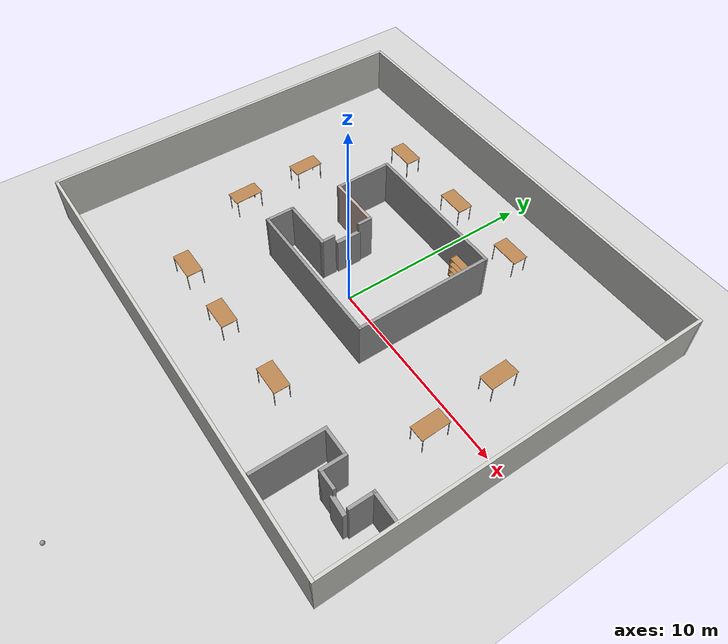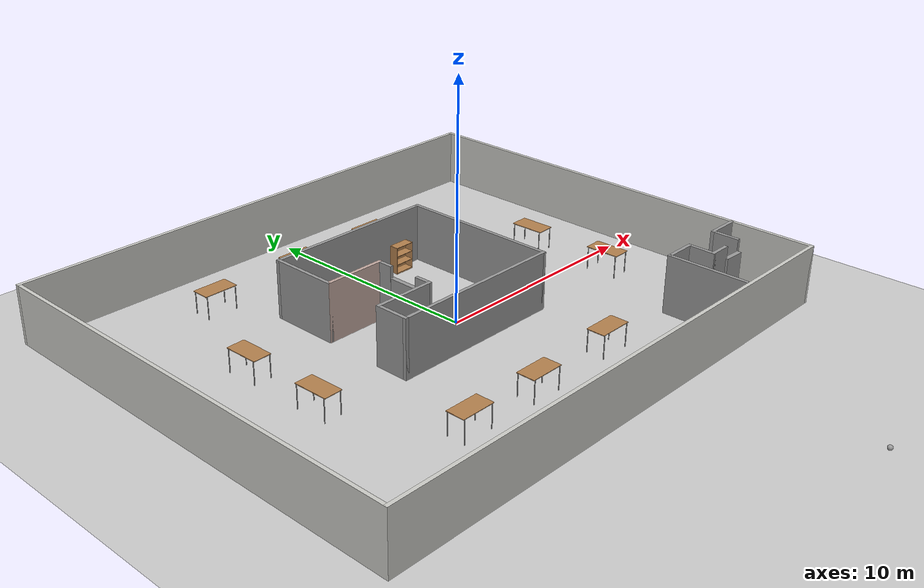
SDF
<sdf version="1.6">
 <world name="default">
  <plugin name="welcome" filename="libwelcome.so"/>
  <light name="sun" type="directional">
   <pose>0 0 10 0 -0 0</pose>
   <diffuse>0.8 0.8 0.8 1</diffuse>
   <specular>0.2 0.2 0.2 1</specular>
   <attenuation>
    <range>1000</range>
    <constant>0.9</constant>
    <linear>0.01</linear>
    <quadratic>0.001</quadratic>
   </attenuation>
   <direction>-0.5 0.1 -0.9</direction>
  </light>
  <model name="ground_plane">
   <static>1</static>
   <link name="link">
    <collision name="collision">
     <geometry><plane><normal>0 0 1</normal><size>100 100</size></plane></geometry>
     <surface>
      <contact><collide_bitmask>65535</collide_bitmask></contact>
      <friction><ode><mu>100</mu><mu2>50</mu2></ode></friction>
     </surface>
    </collision>
    <visual name="visual">
     <cast_shadows>0</cast_shadows>
     <geometry><plane><normal>0 0 1</normal><size>100 100</size></plane></geometry>
     <material>
      <script><uri>file://media/materials/scripts/gazebo.material</uri><name>Gazebo/Grey</name></script>
     </material>
    </visual>
   </link>
  </model>
  <gravity>0 0 -9.8</gravity>
  <magnetic_field>6e-06 2.3e-05 -4.2e-05</magnetic_field>
  <atmosphere type="adiabatic"/>
  <physics name="default_physics" default="0" type="ode">
   <max_step_size>0.001</max_step_size>
   <real_time_factor>1</real_time_factor>
   <real_time_update_rate>1000</real_time_update_rate>
  </physics>
  <scene><ambient>0.4 0.4 0.4 1</ambient><background>0.7 0.7 0.7 1</background><shadows>1</shadows></scene>
  <spherical_coordinates>
   <surface_model>EARTH_WGS84</surface_model>
   <latitude_deg>0</latitude_deg>
   <longitude_deg>0</longitude_deg>
   <elevation>0</elevation>
   <heading_deg>0</heading_deg>
  </spherical_coordinates>
  <model name="building">
   <pose>-0.722 0.805997 0 0 -0 0</pose>
   <link name="Door_0">
    <collision name="Door_0_Collision">
     <geometry><box><size>1.28749 0.2 2</size></box></geometry>
     <pose>0 0 1 0 -0 0</pose>
    </collision>
    <visual name="Door_0_Visual">
     <pose>0 0 1 0 -0 0</pose>
     <geometry><box><size>1.28749 0.2 2</size></box></geometry>
     <material>
      <script><uri>file://media/materials/scripts/gazebo.material</uri><name>Gazebo/Grey</name></script>
     </material>
    </visual>
    <pose>-1.03517 0.324293 0 0 0 -1.57581</pose>
   </link>
   <link name="Door_1">
    <collision name="Door_1_Collision">
     <geometry><box><size>0.932677 0.2 2</size></box></geometry>
     <pose>0 0 1 0 -0 0</pose>
    </collision>
    <visual name="Door_1_Visual">
     <pose>0 0 1 0 -0 0</pose>
     <geometry><box><size>0.932677 0.2 2</size></box></geometry>
     <material>
      <script><uri>file://media/materials/scripts/gazebo.material</uri><name>Gazebo/Grey</name></script>
     </material>
    </visual>
    <pose>9.75351 -7.35998 0 0 0 -0.048775</pose>
   </link>
   <link name="Wall_11">
    <collision name="Wall_11_Collision">
     <geometry><box><size>7.75 0.15 2.5</size></box></geometry>
     <pose>0 0 1.25 0 -0 0</pose>
    </collision>
    <visual name="Wall_11_Visual">
     <pose>0 0 1.25 0 -0 0</pose>
     <geometry><box><size>7.75 0.15 2.5</size></box></geometry>
     <material>
      <script><uri>file://media/materials/scripts/gazebo.material</uri><name>Gazebo/Grey</name></script>
      <ambient>1 1 1 1</ambient>
     </material>
     <meta><layer>0</layer></meta>
    </visual>
    <pose>0.135 -2.427 0 0 -0 0</pose>
   </link>
   <link name="Wall_12">
    <collision name="Wall_12_Collision">
     <geometry><box><size>7 0.15 2.5</size></box></geometry>
     <pose>0 0 1.25 0 -0 0</pose>
    </collision>
    <visual name="Wall_12_Visual">
     <pose>0 0 1.25 0 -0 0</pose>
     <geometry><box><size>7 0.15 2.5</size></box></geometry>
     <material>
      <script><uri>file://media/materials/scripts/gazebo.material</uri><name>Gazebo/Grey</name></script>
      <ambient>1 1 1 1</ambient>
     </material>
     <meta><layer>0</layer></meta>
    </visual>
    <pose>3.935 0.998 0 0 -0 1.5708</pose>
   </link>
   <link name="Wall_13">
    <collision name="Wall_13_Collision">
     <geometry><box><size>7.75 0.15 2.5</size></box></geometry>
     <pose>0 0 1.25 0 -0 0</pose>
    </collision>
    <visual name="Wall_13_Visual">
     <pose>0 0 1.25 0 -0 0</pose>
     <geometry><box><size>7.75 0.15 2.5</size></box></geometry>
     <material>
      <script><uri>file://media/materials/scripts/gazebo.material</uri><name>Gazebo/Grey</name></script>
      <ambient>1 1 1 1</ambient>
     </material>
     <meta><layer>0</layer></meta>
    </visual>
    <pose>0.135 4.423 0 0 -0 3.14159</pose>
   </link>
   <link name="Wall_15">
    <collision name="Wall_15_Collision">
     <geometry><box><size>3 0.15 2.5</size></box></geometry>
     <pose>0 0 1.25 0 -0 0</pose>
    </collision>
    <visual name="Wall_15_Visual">
     <pose>0 0 1.25 0 -0 0</pose>
     <geometry><box><size>3 0.15 2.5</size></box></geometry>
     <material>
      <script><uri>file://media/materials/scripts/gazebo.material</uri><name>Gazebo/Grey</name></script>
      <ambient>1 1 1 1</ambient>
     </material>
     <meta><layer>0</layer></meta>
    </visual>
    <pose>-3.665 2.998 0 0 0 -1.5708</pose>
   </link>
   <link name="Wall_16">
    <collision name="Wall_16_Collision">
     <geometry><box><size>2.75 0.15 2.5</size></box></geometry>
     <pose>0 0 1.25 0 -0 0</pose>
    </collision>
    <visual name="Wall_16_Visual">
     <pose>0 0 1.25 0 -0 0</pose>
     <geometry><box><size>2.75 0.15 2.5</size></box></geometry>
     <material>
      <script><uri>file://media/materials/scripts/gazebo.material</uri><name>Gazebo/Grey</name></script>
      <ambient>0.760784 0.662745 0.627451 1</ambient>
     </material>
     <meta><layer>0</layer></meta>
    </visual>
    <pose>-2.365 1.573 0 0 -0 0</pose>
   </link>
   <link name="Wall_17">
    <collision name="Wall_17_Collision">
     <geometry><box><size>0.75 0.15 2.5</size></box></geometry>
     <pose>0 0 1.25 0 -0 0</pose>
    </collision>
    <visual name="Wall_17_Visual">
     <pose>0 0 1.25 0 -0 0</pose>
     <geometry><box><size>0.75 0.15 2.5</size></box></geometry>
     <material>
      <script><uri>file://media/materials/scripts/gazebo.material</uri><name>Gazebo/Grey</name></script>
      <ambient>1 1 1 1</ambient>
     </material>
     <meta><layer>0</layer></meta>
    </visual>
    <pose>-1.065 1.273 0 0 0 -1.5708</pose>
   </link>
   <link name="Wall_19">
    <collision name="Wall_19_Collision">
     <geometry><box><size>1.5 0.15 2.5</size></box></geometry>
     <pose>0 0 1.25 0 -0 0</pose>
    </collision>
    <visual name="Wall_19_Visual">
     <pose>0 0 1.25 0 -0 0</pose>
     <geometry><box><size>1.5 0.15 2.5</size></box></geometry>
     <material>
      <script><uri>file://media/materials/scripts/gazebo.material</uri><name>Gazebo/Grey</name></script>
      <ambient>1 1 1 1</ambient>
     </material>
     <meta><layer>0</layer></meta>
    </visual>
    <pose>-3.665 -1.752 0 0 -0 1.5708</pose>
   </link>
   <link name="Wall_20">
    <collision name="Wall_20_Collision">
     <geometry><box><size>2.75 0.15 2.5</size></box></geometry>
     <pose>0 0 1.25 0 -0 0</pose>
    </collision>
    <visual name="Wall_20_Visual">
     <pose>0 0 1.25 0 -0 0</pose>
     <geometry><box><size>2.75 0.15 2.5</size></box></geometry>
     <material>
      <script><uri>file://media/materials/scripts/gazebo.material</uri><name>Gazebo/Grey</name></script>
      <ambient>1 1 1 1</ambient>
     </material>
     <meta><layer>0</layer></meta>
    </visual>
    <pose>-2.365 -1.077 0 0 -0 0</pose>
   </link>
   <link name="Wall_21">
    <collision name="Wall_21_Collision">
     <geometry><box><size>0.75 0.15 2.5</size></box></geometry>
     <pose>0 0 1.25 0 -0 0</pose>
    </collision>
    <visual name="Wall_21_Visual">
     <pose>0 0 1.25 0 -0 0</pose>
     <geometry><box><size>0.75 0.15 2.5</size></box></geometry>
     <material>
      <script><uri>file://media/materials/scripts/gazebo.material</uri><name>Gazebo/Grey</name></script>
      <ambient>1 1 1 1</ambient>
     </material>
     <meta><layer>0</layer></meta>
    </visual>
    <pose>-1.06498 -0.777074 0 0 -0 1.57073</pose>
   </link>
   <link name="Wall_4">
    <collision name="Wall_4_Collision">
     <geometry><box><size>19.5 0.15 2.5</size></box></geometry>
     <pose>0 0 1.25 0 -0 0</pose>
    </collision>
    <visual name="Wall_4_Visual">
     <pose>0 0 1.25 0 -0 0</pose>
     <geometry><box><size>19.5 0.15 2.5</size></box></geometry>
     <material>
      <script><uri>file://media/materials/scripts/gazebo.material</uri><name>Gazebo/CeilingTiled</name></script>
      <ambient>0.435294 0.796078 0.67451 1</ambient>
     </material>
     <meta><layer>0</layer></meta>
    </visual>
    <pose>-11.675 0 0 0 0 -1.5708</pose>
   </link>
   <link name="Wall_5">
    <collision name="Wall_5_Collision">
     <geometry><box><size>23.5 0.15 2.5</size></box></geometry>
     <pose>0 0 1.25 0 -0 0</pose>
    </collision>
    <visual name="Wall_5_Visual">
     <pose>0 0 1.25 0 -0 0</pose>
     <geometry><box><size>23.5 0.15 2.5</size></box></geometry>
     <material>
      <script><uri>file://media/materials/scripts/gazebo.material</uri><name>Gazebo/CeilingTiled</name></script>
      <ambient>0.435294 0.796078 0.67451 1</ambient>
     </material>
     <meta><layer>0</layer></meta>
    </visual>
    <pose>0 -9.675 0 0 -0 0</pose>
   </link>
   <link name="Wall_51">
    <collision name="Wall_51_Collision">
     <geometry><box><size>3.5 0.15 2.5</size></box></geometry>
     <pose>0 0 1.25 0 -0 0</pose>
    </collision>
    <visual name="Wall_51_Visual">
     <pose>0 0 1.25 0 -0 0</pose>
     <geometry><box><size>3.5 0.15 2.5</size></box></geometry>
     <material>
      <script><uri>file://media/materials/scripts/gazebo.material</uri><name>Gazebo/Grey</name></script>
      <ambient>1 1 1 1</ambient>
     </material>
     <meta><layer>0</layer></meta>
    </visual>
    <pose>7.08944 -7.83193 0 0 -0 1.5708</pose>
   </link>
   <link name="Wall_52">
    <collision name="Wall_52_Collision">
     <geometry><box><size>1.5 0.15 2.5</size></box></geometry>
     <pose>0 0 1.25 0 -0 0</pose>
    </collision>
    <visual name="Wall_52_Visual">
     <pose>0 0 1.25 0 -0 0</pose>
     <geometry><box><size>1.5 0.15 2.5</size></box></geometry>
     <material>
      <script><uri>file://media/materials/scripts/gazebo.material</uri><name>Gazebo/Grey</name></script>
      <ambient>1 1 1 1</ambient>
     </material>
     <meta><layer>0</layer></meta>
    </visual>
    <pose>7.76444 -6.15693 0 0 -0 0</pose>
   </link>
   <link name="Wall_53">
    <collision name="Wall_53_Collision">
     <geometry><box><size>1.25 0.15 2.5</size></box></geometry>
     <pose>0 0 1.25 0 -0 0</pose>
    </collision>
    <visual name="Wall_53_Visual">
     <pose>0 0 1.25 0 -0 0</pose>
     <geometry><box><size>1.25 0.15 2.5</size></box></geometry>
     <material>
      <script><uri>file://media/materials/scripts/gazebo.material</uri><name>Gazebo/Grey</name></script>
      <ambient>1 1 1 1</ambient>
     </material>
     <meta><layer>0</layer></meta>
    </visual>
    <pose>8.43944 -6.70693 0 0 0 -1.5708</pose>
   </link>
   <link name="Wall_54">
    <collision name="Wall_54_Collision">
     <geometry><box><size>1 0.15 2.5</size></box></geometry>
     <pose>0 0 1.25 0 -0 0</pose>
    </collision>
    <visual name="Wall_54_Visual">
     <pose>0 0 1.25 0 -0 0</pose>
     <geometry><box><size>1 0.15 2.5</size></box></geometry>
     <material>
      <script><uri>file://media/materials/scripts/gazebo.material</uri><name>Gazebo/Grey</name></script>
      <ambient>1 1 1 1</ambient>
     </material>
     <meta><layer>0</layer></meta>
    </visual>
    <pose>8.86444 -7.25693 0 0 -0 0</pose>
   </link>
   <link name="Wall_56">
    <collision name="Wall_56_Collision">
     <geometry><box><size>1.5 0.15 2.5</size></box></geometry>
     <pose>0 0 1.25 0 -0 0</pose>
    </collision>
    <visual name="Wall_56_Visual">
     <pose>0 0 1.25 0 -0 0</pose>
     <geometry><box><size>1.5 0.15 2.5</size></box></geometry>
     <material>
      <script><uri>file://media/materials/scripts/gazebo.material</uri><name>Gazebo/Grey</name></script>
      <ambient>1 1 1 1</ambient>
     </material>
     <meta><layer>0</layer></meta>
    </visual>
    <pose>10.9273 -6.11068 0 0 -0 3.14159</pose>
   </link>
   <link name="Wall_57">
    <collision name="Wall_57_Collision">
     <geometry><box><size>1.25 0.15 2.5</size></box></geometry>
     <pose>0 0 1.25 0 -0 0</pose>
    </collision>
    <visual name="Wall_57_Visual">
     <pose>0 0 1.25 0 -0 0</pose>
     <geometry><box><size>1.25 0.15 2.5</size></box></geometry>
     <material>
      <script><uri>file://media/materials/scripts/gazebo.material</uri><name>Gazebo/Grey</name></script>
      <ambient>1 1 1 1</ambient>
     </material>
     <meta><layer>0</layer></meta>
    </visual>
    <pose>10.2523 -6.66068 0 0 0 -1.5708</pose>
   </link>
   <link name="Wall_6">
    <collision name="Wall_6_Collision">
     <geometry><box><size>19.5 0.15 2.5</size></box></geometry>
     <pose>0 0 1.25 0 -0 0</pose>
    </collision>
    <visual name="Wall_6_Visual">
     <pose>0 0 1.25 0 -0 0</pose>
     <geometry><box><size>19.5 0.15 2.5</size></box></geometry>
     <material>
      <script><uri>file://media/materials/scripts/gazebo.material</uri><name>Gazebo/CeilingTiled</name></script>
      <ambient>0.435294 0.796078 0.67451 1</ambient>
     </material>
     <meta><layer>0</layer></meta>
    </visual>
    <pose>11.675 0 0 0 -0 1.5708</pose>
   </link>
   <link name="Wall_7">
    <collision name="Wall_7_Collision">
     <geometry><box><size>23.5 0.15 2.5</size></box></geometry>
     <pose>0 0 1.25 0 -0 0</pose>
    </collision>
    <visual name="Wall_7_Visual">
     <pose>0 0 1.25 0 -0 0</pose>
     <geometry><box><size>23.5 0.15 2.5</size></box></geometry>
     <material>
      <script><uri>file://media/materials/scripts/gazebo.material</uri><name>Gazebo/CeilingTiled</name></script>
      <ambient>0.435294 0.796078 0.67451 1</ambient>
     </material>
     <meta><layer>0</layer></meta>
    </visual>
    <pose>0 9.675 0 0 -0 3.14159</pose>
   </link>
   <static>1</static>
  </model>
  <model name="bookshelf">
   <static>1</static>
   <link name="link">
    <inertial><mass>1</mass></inertial>
    <collision name="back">
     <pose>0 0.005 0.6 0 -0 0</pose>
     <geometry><box><size>0.9 0.01 1.2</size></box></geometry>
    </collision>
    <visual name="visual1">
     <pose>0 0.005 0.6 0 -0 0</pose>
     <geometry><box><size>0.9 0.01 1.2</size></box></geometry>
     <material>
      <script><uri>file://media/materials/scripts/gazebo.material</uri><name>Gazebo/Wood</name></script>
     </material>
    </visual>
    <collision name="left_side">
     <pose>0.45 -0.195 0.6 0 -0 0</pose>
     <geometry><box><size>0.02 0.4 1.2</size></box></geometry>
    </collision>
    <visual name="visual2">
     <pose>0.45 -0.195 0.6 0 -0 0</pose>
     <geometry><box><size>0.02 0.4 1.2</size></box></geometry>
     <material>
      <script><uri>file://media/materials/scripts/gazebo.material</uri><name>Gazebo/Wood</name></script>
     </material>
    </visual>
    <collision name="right_side">
     <pose>-0.45 -0.195 0.6 0 -0 0</pose>
     <geometry><box><size>0.02 0.4 1.2</size></box></geometry>
    </collision>
    <visual name="visual3">
     <pose>-0.45 -0.195 0.6 0 -0 0</pose>
     <geometry><box><size>0.02 0.4 1.2</size></box></geometry>
     <material>
      <script><uri>file://media/materials/scripts/gazebo.material</uri><name>Gazebo/Wood</name></script>
     </material>
    </visual>
    <collision name="bottom">
     <pose>0 -0.195 0.03 0 -0 0</pose>
     <geometry><box><size>0.88 0.4 0.06</size></box></geometry>
    </collision>
    <visual name="visual4">
     <pose>0 -0.195 0.03 0 -0 0</pose>
     <geometry><box><size>0.88 0.4 0.06</size></box></geometry>
     <material>
      <script><uri>file://media/materials/scripts/gazebo.material</uri><name>Gazebo/Wood</name></script>
     </material>
    </visual>
    <collision name="top">
     <pose>0 -0.195 1.19 0 -0 0</pose>
     <geometry><box><size>0.88 0.4 0.02</size></box></geometry>
    </collision>
    <visual name="visual5">
     <pose>0 -0.195 1.19 0 -0 0</pose>
     <geometry><box><size>0.88 0.4 0.02</size></box></geometry>
     <material>
      <script><uri>file://media/materials/scripts/gazebo.material</uri><name>Gazebo/Wood</name></script>
     </material>
    </visual>
    <collision name="low_shelf">
     <pose>0 -0.195 0.43 0 -0 0</pose>
     <geometry><box><size>0.88 0.4 0.02</size></box></geometry>
    </collision>
    <visual name="visual6">
     <pose>0 -0.195 0.43 0 -0 0</pose>
     <geometry><box><size>0.88 0.4 0.02</size></box></geometry>
     <material>
      <script><uri>file://media/materials/scripts/gazebo.material</uri><name>Gazebo/Wood</name></script>
     </material>
    </visual>
    <collision name="high_shelf">
     <pose>0 -0.195 0.8 0 -0 0</pose>
     <geometry><box><size>0.88 0.4 0.02</size></box></geometry>
    </collision>
    <visual name="visual7">
     <pose>0 -0.195 0.8 0 -0 0</pose>
     <geometry><box><size>0.88 0.4 0.02</size></box></geometry>
     <material>
      <script><uri>file://media/materials/scripts/gazebo.material</uri><name>Gazebo/Wood</name></script>
     </material>
    </visual>
   </link>
   <pose>1.9332 5.1179 0 0 -0 0</pose>
  </model>
  <model name="table">
   <static>1</static>
   <link name="link">
    <collision name="surface">
     <pose>0 0 1 0 -0 0</pose>
     <geometry><box><size>1.5 0.8 0.03</size></box></geometry>
     <surface><friction><ode><mu>0.6</mu><mu2>0.6</mu2></ode></friction></surface>
    </collision>
    <visual name="visual1">
     <pose>0 0 1 0 -0 0</pose>
     <geometry><box><size>1.5 0.8 0.03</size></box></geometry>
     <material>
      <script><uri>file://media/materials/scripts/gazebo.material</uri><name>Gazebo/Wood</name></script>
     </material>
    </visual>
    <collision name="front_left_leg">
     <pose>0.68 0.38 0.5 0 -0 0</pose>
     <geometry><cylinder><radius>0.02</radius><length>1</length></cylinder></geometry>
    </collision>
    <visual name="front_left_leg">
     <pose>0.68 0.38 0.5 0 -0 0</pose>
     <geometry><cylinder><radius>0.02</radius><length>1</length></cylinder></geometry>
     <material>
      <script><uri>file://media/materials/scripts/gazebo.material</uri><name>Gazebo/Grey</name></script>
     </material>
    </visual>
    <collision name="front_right_leg">
     <pose>0.68 -0.38 0.5 0 -0 0</pose>
     <geometry><cylinder><radius>0.02</radius><length>1</length></cylinder></geometry>
    </collision>
    <visual name="front_right_leg">
     <pose>0.68 -0.38 0.5 0 -0 0</pose>
     <geometry><cylinder><radius>0.02</radius><length>1</length></cylinder></geometry>
     <material>
      <script><uri>file://media/materials/scripts/gazebo.material</uri><name>Gazebo/Grey</name></script>
     </material>
    </visual>
    <collision name="back_right_leg">
     <pose>-0.68 -0.38 0.5 0 -0 0</pose>
     <geometry><cylinder><radius>0.02</radius><length>1</length></cylinder></geometry>
    </collision>
    <visual name="back_right_leg">
     <pose>-0.68 -0.38 0.5 0 -0 0</pose>
     <geometry><cylinder><radius>0.02</radius><length>1</length></cylinder></geometry>
     <material>
      <script><uri>file://media/materials/scripts/gazebo.material</uri><name>Gazebo/Grey</name></script>
     </material>
    </visual>
    <collision name="back_left_leg">
     <pose>-0.68 0.38 0.5 0 -0 0</pose>
     <geometry><cylinder><radius>0.02</radius><length>1</length></cylinder></geometry>
    </collision>
    <visual name="back_left_leg">
     <pose>-0.68 0.38 0.5 0 -0 0</pose>
     <geometry><cylinder><radius>0.02</radius><length>1</length></cylinder></geometry>
     <material>
      <script><uri>file://media/materials/scripts/gazebo.material</uri><name>Gazebo/Grey</name></script>
     </material>
    </visual>
   </link>
   <pose>2.35411 -5.44146 0 0 -0 0</pose>
  </model>
  <model name="table_clone">
   <static>1</static>
   <link name="link">
    <collision name="surface">
     <pose>0 0 1 0 -0 0</pose>
     <geometry><box><size>1.5 0.8 0.03</size></box></geometry>
     <surface><friction><ode><mu>0.6</mu><mu2>0.6</mu2></ode></friction></surface>
    </collision>
    <visual name="visual1">
     <pose>0 0 1 0 -0 0</pose>
     <geometry><box><size>1.5 0.8 0.03</size></box></geometry>
     <material>
      <script><uri>file://media/materials/scripts/gazebo.material</uri><name>Gazebo/Wood</name></script>
     </material>
    </visual>
    <collision name="front_left_leg">
     <pose>0.68 0.38 0.5 0 -0 0</pose>
     <geometry><cylinder><radius>0.02</radius><length>1</length></cylinder></geometry>
    </collision>
    <visual name="front_left_leg">
     <pose>0.68 0.38 0.5 0 -0 0</pose>
     <geometry><cylinder><radius>0.02</radius><length>1</length></cylinder></geometry>
     <material>
      <script><uri>file://media/materials/scripts/gazebo.material</uri><name>Gazebo/Grey</name></script>
     </material>
    </visual>
    <collision name="front_right_leg">
     <pose>0.68 -0.38 0.5 0 -0 0</pose>
     <geometry><cylinder><radius>0.02</radius><length>1</length></cylinder></geometry>
    </collision>
    <visual name="front_right_leg">
     <pose>0.68 -0.38 0.5 0 -0 0</pose>
     <geometry><cylinder><radius>0.02</radius><length>1</length></cylinder></geometry>
     <material>
      <script><uri>file://media/materials/scripts/gazebo.material</uri><name>Gazebo/Grey</name></script>
     </material>
    </visual>
    <collision name="back_right_leg">
     <pose>-0.68 -0.38 0.5 0 -0 0</pose>
     <geometry><cylinder><radius>0.02</radius><length>1</length></cylinder></geometry>
    </collision>
    <visual name="back_right_leg">
     <pose>-0.68 -0.38 0.5 0 -0 0</pose>
     <geometry><cylinder><radius>0.02</radius><length>1</length></cylinder></geometry>
     <material>
      <script><uri>file://media/materials/scripts/gazebo.material</uri><name>Gazebo/Grey</name></script>
     </material>
    </visual>
    <collision name="back_left_leg">
     <pose>-0.68 0.38 0.5 0 -0 0</pose>
     <geometry><cylinder><radius>0.02</radius><length>1</length></cylinder></geometry>
    </collision>
    <visual name="back_left_leg">
     <pose>-0.68 0.38 0.5 0 -0 0</pose>
     <geometry><cylinder><radius>0.02</radius><length>1</length></cylinder></geometry>
     <material>
      <script><uri>file://media/materials/scripts/gazebo.material</uri><name>Gazebo/Grey</name></script>
     </material>
    </visual>
   </link>
   <pose>-1.86776 -5.62268 0 0 -0 0</pose>
  </model>
  <model name="table_clone_0">
   <static>1</static>
   <link name="link">
    <collision name="surface">
     <pose>0 0 1 0 -0 0</pose>
     <geometry><box><size>1.5 0.8 0.03</size></box></geometry>
     <surface><friction><ode><mu>0.6</mu><mu2>0.6</mu2></ode></friction></surface>
    </collision>
    <visual name="visual1">
     <pose>0 0 1 0 -0 0</pose>
     <geometry><box><size>1.5 0.8 0.03</size></box></geometry>
     <material>
      <script><uri>file://media/materials/scripts/gazebo.material</uri><name>Gazebo/Wood</name></script>
     </material>
    </visual>
    <collision name="front_left_leg">
     <pose>0.68 0.38 0.5 0 -0 0</pose>
     <geometry><cylinder><radius>0.02</radius><length>1</length></cylinder></geometry>
    </collision>
    <visual name="front_left_leg">
     <pose>0.68 0.38 0.5 0 -0 0</pose>
     <geometry><cylinder><radius>0.02</radius><length>1</length></cylinder></geometry>
     <material>
      <script><uri>file://media/materials/scripts/gazebo.material</uri><name>Gazebo/Grey</name></script>
     </material>
    </visual>
    <collision name="front_right_leg">
     <pose>0.68 -0.38 0.5 0 -0 0</pose>
     <geometry><cylinder><radius>0.02</radius><length>1</length></cylinder></geometry>
    </collision>
    <visual name="front_right_leg">
     <pose>0.68 -0.38 0.5 0 -0 0</pose>
     <geometry><cylinder><radius>0.02</radius><length>1</length></cylinder></geometry>
     <material>
      <script><uri>file://media/materials/scripts/gazebo.material</uri><name>Gazebo/Grey</name></script>
     </material>
    </visual>
    <collision name="back_right_leg">
     <pose>-0.68 -0.38 0.5 0 -0 0</pose>
     <geometry><cylinder><radius>0.02</radius><length>1</length></cylinder></geometry>
    </collision>
    <visual name="back_right_leg">
     <pose>-0.68 -0.38 0.5 0 -0 0</pose>
     <geometry><cylinder><radius>0.02</radius><length>1</length></cylinder></geometry>
     <material>
      <script><uri>file://media/materials/scripts/gazebo.material</uri><name>Gazebo/Grey</name></script>
     </material>
    </visual>
    <collision name="back_left_leg">
     <pose>-0.68 0.38 0.5 0 -0 0</pose>
     <geometry><cylinder><radius>0.02</radius><length>1</length></cylinder></geometry>
    </collision>
    <visual name="back_left_leg">
     <pose>-0.68 0.38 0.5 0 -0 0</pose>
     <geometry><cylinder><radius>0.02</radius><length>1</length></cylinder></geometry>
     <material>
      <script><uri>file://media/materials/scripts/gazebo.material</uri><name>Gazebo/Grey</name></script>
     </material>
    </visual>
   </link>
   <pose>-5.35874 -5.55545 0 0 -0 0</pose>
  </model>
  <model name="table_clone_0_clone">
   <static>1</static>
   <link name="link">
    <collision name="surface">
     <pose>0 0 1 0 -0 0</pose>
     <geometry><box><size>1.5 0.8 0.03</size></box></geometry>
     <surface><friction><ode><mu>0.6</mu><mu2>0.6</mu2></ode></friction></surface>
    </collision>
    <visual name="visual1">
     <pose>0 0 1 0 -0 0</pose>
     <geometry><box><size>1.5 0.8 0.03</size></box></geometry>
     <material>
      <script><uri>file://media/materials/scripts/gazebo.material</uri><name>Gazebo/Wood</name></script>
     </material>
    </visual>
    <collision name="front_left_leg">
     <pose>0.68 0.38 0.5 0 -0 0</pose>
     <geometry><cylinder><radius>0.02</radius><length>1</length></cylinder></geometry>
    </collision>
    <visual name="front_left_leg">
     <pose>0.68 0.38 0.5 0 -0 0</pose>
     <geometry><cylinder><radius>0.02</radius><length>1</length></cylinder></geometry>
     <material>
      <script><uri>file://media/materials/scripts/gazebo.material</uri><name>Gazebo/Grey</name></script>
     </material>
    </visual>
    <collision name="front_right_leg">
     <pose>0.68 -0.38 0.5 0 -0 0</pose>
     <geometry><cylinder><radius>0.02</radius><length>1</length></cylinder></geometry>
    </collision>
    <visual name="front_right_leg">
     <pose>0.68 -0.38 0.5 0 -0 0</pose>
     <geometry><cylinder><radius>0.02</radius><length>1</length></cylinder></geometry>
     <material>
      <script><uri>file://media/materials/scripts/gazebo.material</uri><name>Gazebo/Grey</name></script>
     </material>
    </visual>
    <collision name="back_right_leg">
     <pose>-0.68 -0.38 0.5 0 -0 0</pose>
     <geometry><cylinder><radius>0.02</radius><length>1</length></cylinder></geometry>
    </collision>
    <visual name="back_right_leg">
     <pose>-0.68 -0.38 0.5 0 -0 0</pose>
     <geometry><cylinder><radius>0.02</radius><length>1</length></cylinder></geometry>
     <material>
      <script><uri>file://media/materials/scripts/gazebo.material</uri><name>Gazebo/Grey</name></script>
     </material>
    </visual>
    <collision name="back_left_leg">
     <pose>-0.68 0.38 0.5 0 -0 0</pose>
     <geometry><cylinder><radius>0.02</radius><length>1</length></cylinder></geometry>
    </collision>
    <visual name="back_left_leg">
     <pose>-0.68 0.38 0.5 0 -0 0</pose>
     <geometry><cylinder><radius>0.02</radius><length>1</length></cylinder></geometry>
     <material>
      <script><uri>file://media/materials/scripts/gazebo.material</uri><name>Gazebo/Grey</name></script>
     </material>
    </visual>
   </link>
   <pose>-7.96209 -0.990144 0 9.2e-05 0.003589 -1.54506</pose>
  </model>
  <model name="table_clone_0_clone_clone">
   <static>1</static>
   <link name="link">
    <collision name="surface">
     <pose>0 0 1 0 -0 0</pose>
     <geometry><box><size>1.5 0.8 0.03</size></box></geometry>
     <surface><friction><ode><mu>0.6</mu><mu2>0.6</mu2></ode></friction></surface>
    </collision>
    <visual name="visual1">
     <pose>0 0 1 0 -0 0</pose>
     <geometry><box><size>1.5 0.8 0.03</size></box></geometry>
     <material>
      <script><uri>file://media/materials/scripts/gazebo.material</uri><name>Gazebo/Wood</name></script>
     </material>
    </visual>
    <collision name="front_left_leg">
     <pose>0.68 0.38 0.5 0 -0 0</pose>
     <geometry><cylinder><radius>0.02</radius><length>1</length></cylinder></geometry>
    </collision>
    <visual name="front_left_leg">
     <pose>0.68 0.38 0.5 0 -0 0</pose>
     <geometry><cylinder><radius>0.02</radius><length>1</length></cylinder></geometry>
     <material>
      <script><uri>file://media/materials/scripts/gazebo.material</uri><name>Gazebo/Grey</name></script>
     </material>
    </visual>
    <collision name="front_right_leg">
     <pose>0.68 -0.38 0.5 0 -0 0</pose>
     <geometry><cylinder><radius>0.02</radius><length>1</length></cylinder></geometry>
    </collision>
    <visual name="front_right_leg">
     <pose>0.68 -0.38 0.5 0 -0 0</pose>
     <geometry><cylinder><radius>0.02</radius><length>1</length></cylinder></geometry>
     <material>
      <script><uri>file://media/materials/scripts/gazebo.material</uri><name>Gazebo/Grey</name></script>
     </material>
    </visual>
    <collision name="back_right_leg">
     <pose>-0.68 -0.38 0.5 0 -0 0</pose>
     <geometry><cylinder><radius>0.02</radius><length>1</length></cylinder></geometry>
    </collision>
    <visual name="back_right_leg">
     <pose>-0.68 -0.38 0.5 0 -0 0</pose>
     <geometry><cylinder><radius>0.02</radius><length>1</length></cylinder></geometry>
     <material>
      <script><uri>file://media/materials/scripts/gazebo.material</uri><name>Gazebo/Grey</name></script>
     </material>
    </visual>
    <collision name="back_left_leg">
     <pose>-0.68 0.38 0.5 0 -0 0</pose>
     <geometry><cylinder><radius>0.02</radius><length>1</length></cylinder></geometry>
    </collision>
    <visual name="back_left_leg">
     <pose>-0.68 0.38 0.5 0 -0 0</pose>
     <geometry><cylinder><radius>0.02</radius><length>1</length></cylinder></geometry>
     <material>
      <script><uri>file://media/materials/scripts/gazebo.material</uri><name>Gazebo/Grey</name></script>
     </material>
    </visual>
   </link>
   <pose>-8.04147 2.63602 0 9.2e-05 0.003589 -1.54506</pose>
  </model>
  <model name="table_clone_0_clone_clone_clone">
   <static>1</static>
   <link name="link">
    <collision name="surface">
     <pose>0 0 1 0 -0 0</pose>
     <geometry><box><size>1.5 0.8 0.03</size></box></geometry>
     <surface><friction><ode><mu>0.6</mu><mu2>0.6</mu2></ode></friction></surface>
    </collision>
    <visual name="visual1">
     <pose>0 0 1 0 -0 0</pose>
     <geometry><box><size>1.5 0.8 0.03</size></box></geometry>
     <material>
      <script><uri>file://media/materials/scripts/gazebo.material</uri><name>Gazebo/Wood</name></script>
     </material>
    </visual>
    <collision name="front_left_leg">
     <pose>0.68 0.38 0.5 0 -0 0</pose>
     <geometry><cylinder><radius>0.02</radius><length>1</length></cylinder></geometry>
    </collision>
    <visual name="front_left_leg">
     <pose>0.68 0.38 0.5 0 -0 0</pose>
     <geometry><cylinder><radius>0.02</radius><length>1</length></cylinder></geometry>
     <material>
      <script><uri>file://media/materials/scripts/gazebo.material</uri><name>Gazebo/Grey</name></script>
     </material>
    </visual>
    <collision name="front_right_leg">
     <pose>0.68 -0.38 0.5 0 -0 0</pose>
     <geometry><cylinder><radius>0.02</radius><length>1</length></cylinder></geometry>
    </collision>
    <visual name="front_right_leg">
     <pose>0.68 -0.38 0.5 0 -0 0</pose>
     <geometry><cylinder><radius>0.02</radius><length>1</length></cylinder></geometry>
     <material>
      <script><uri>file://media/materials/scripts/gazebo.material</uri><name>Gazebo/Grey</name></script>
     </material>
    </visual>
    <collision name="back_right_leg">
     <pose>-0.68 -0.38 0.5 0 -0 0</pose>
     <geometry><cylinder><radius>0.02</radius><length>1</length></cylinder></geometry>
    </collision>
    <visual name="back_right_leg">
     <pose>-0.68 -0.38 0.5 0 -0 0</pose>
     <geometry><cylinder><radius>0.02</radius><length>1</length></cylinder></geometry>
     <material>
      <script><uri>file://media/materials/scripts/gazebo.material</uri><name>Gazebo/Grey</name></script>
     </material>
    </visual>
    <collision name="back_left_leg">
     <pose>-0.68 0.38 0.5 0 -0 0</pose>
     <geometry><cylinder><radius>0.02</radius><length>1</length></cylinder></geometry>
    </collision>
    <visual name="back_left_leg">
     <pose>-0.68 0.38 0.5 0 -0 0</pose>
     <geometry><cylinder><radius>0.02</radius><length>1</length></cylinder></geometry>
     <material>
      <script><uri>file://media/materials/scripts/gazebo.material</uri><name>Gazebo/Grey</name></script>
     </material>
    </visual>
   </link>
   <pose>7.61249 2.49601 0 9.2e-05 0.003589 -1.54506</pose>
  </model>
  <model name="table_clone_0_clone_clone_0">
   <static>1</static>
   <link name="link">
    <collision name="surface">
     <pose>0 0 1 0 -0 0</pose>
     <geometry><box><size>1.5 0.8 0.03</size></box></geometry>
     <surface><friction><ode><mu>0.6</mu><mu2>0.6</mu2></ode></friction></surface>
    </collision>
    <visual name="visual1">
     <pose>0 0 1 0 -0 0</pose>
     <geometry><box><size>1.5 0.8 0.03</size></box></geometry>
     <material>
      <script><uri>file://media/materials/scripts/gazebo.material</uri><name>Gazebo/Wood</name></script>
     </material>
    </visual>
    <collision name="front_left_leg">
     <pose>0.68 0.38 0.5 0 -0 0</pose>
     <geometry><cylinder><radius>0.02</radius><length>1</length></cylinder></geometry>
    </collision>
    <visual name="front_left_leg">
     <pose>0.68 0.38 0.5 0 -0 0</pose>
     <geometry><cylinder><radius>0.02</radius><length>1</length></cylinder></geometry>
     <material>
      <script><uri>file://media/materials/scripts/gazebo.material</uri><name>Gazebo/Grey</name></script>
     </material>
    </visual>
    <collision name="front_right_leg">
     <pose>0.68 -0.38 0.5 0 -0 0</pose>
     <geometry><cylinder><radius>0.02</radius><length>1</length></cylinder></geometry>
    </collision>
    <visual name="front_right_leg">
     <pose>0.68 -0.38 0.5 0 -0 0</pose>
     <geometry><cylinder><radius>0.02</radius><length>1</length></cylinder></geometry>
     <material>
      <script><uri>file://media/materials/scripts/gazebo.material</uri><name>Gazebo/Grey</name></script>
     </material>
    </visual>
    <collision name="back_right_leg">
     <pose>-0.68 -0.38 0.5 0 -0 0</pose>
     <geometry><cylinder><radius>0.02</radius><length>1</length></cylinder></geometry>
    </collision>
    <visual name="back_right_leg">
     <pose>-0.68 -0.38 0.5 0 -0 0</pose>
     <geometry><cylinder><radius>0.02</radius><length>1</length></cylinder></geometry>
     <material>
      <script><uri>file://media/materials/scripts/gazebo.material</uri><name>Gazebo/Grey</name></script>
     </material>
    </visual>
    <collision name="back_left_leg">
     <pose>-0.68 0.38 0.5 0 -0 0</pose>
     <geometry><cylinder><radius>0.02</radius><length>1</length></cylinder></geometry>
    </collision>
    <visual name="back_left_leg">
     <pose>-0.68 0.38 0.5 0 -0 0</pose>
     <geometry><cylinder><radius>0.02</radius><length>1</length></cylinder></geometry>
     <material>
      <script><uri>file://media/materials/scripts/gazebo.material</uri><name>Gazebo/Grey</name></script>
     </material>
    </visual>
   </link>
   <pose>7.87451 -1.35454 0 9.2e-05 0.003589 -1.54506</pose>
  </model>
  <model name="table_clone_1">
   <static>1</static>
   <link name="link">
    <collision name="surface">
     <pose>0 0 1 0 -0 0</pose>
     <geometry><box><size>1.5 0.8 0.03</size></box></geometry>
     <surface><friction><ode><mu>0.6</mu><mu2>0.6</mu2></ode></friction></surface>
    </collision>
    <visual name="visual1">
     <pose>0 0 1 0 -0 0</pose>
     <geometry><box><size>1.5 0.8 0.03</size></box></geometry>
     <material>
      <script><uri>file://media/materials/scripts/gazebo.material</uri><name>Gazebo/Wood</name></script>
     </material>
    </visual>
    <collision name="front_left_leg">
     <pose>0.68 0.38 0.5 0 -0 0</pose>
     <geometry><cylinder><radius>0.02</radius><length>1</length></cylinder></geometry>
    </collision>
    <visual name="front_left_leg">
     <pose>0.68 0.38 0.5 0 -0 0</pose>
     <geometry><cylinder><radius>0.02</radius><length>1</length></cylinder></geometry>
     <material>
      <script><uri>file://media/materials/scripts/gazebo.material</uri><name>Gazebo/Grey</name></script>
     </material>
    </visual>
    <collision name="front_right_leg">
     <pose>0.68 -0.38 0.5 0 -0 0</pose>
     <geometry><cylinder><radius>0.02</radius><length>1</length></cylinder></geometry>
    </collision>
    <visual name="front_right_leg">
     <pose>0.68 -0.38 0.5 0 -0 0</pose>
     <geometry><cylinder><radius>0.02</radius><length>1</length></cylinder></geometry>
     <material>
      <script><uri>file://media/materials/scripts/gazebo.material</uri><name>Gazebo/Grey</name></script>
     </material>
    </visual>
    <collision name="back_right_leg">
     <pose>-0.68 -0.38 0.5 0 -0 0</pose>
     <geometry><cylinder><radius>0.02</radius><length>1</length></cylinder></geometry>
    </collision>
    <visual name="back_right_leg">
     <pose>-0.68 -0.38 0.5 0 -0 0</pose>
     <geometry><cylinder><radius>0.02</radius><length>1</length></cylinder></geometry>
     <material>
      <script><uri>file://media/materials/scripts/gazebo.material</uri><name>Gazebo/Grey</name></script>
     </material>
    </visual>
    <collision name="back_left_leg">
     <pose>-0.68 0.38 0.5 0 -0 0</pose>
     <geometry><cylinder><radius>0.02</radius><length>1</length></cylinder></geometry>
    </collision>
    <visual name="back_left_leg">
     <pose>-0.68 0.38 0.5 0 -0 0</pose>
     <geometry><cylinder><radius>0.02</radius><length>1</length></cylinder></geometry>
     <material>
      <script><uri>file://media/materials/scripts/gazebo.material</uri><name>Gazebo/Grey</name></script>
     </material>
    </visual>
   </link>
   <pose>2.5897 7.51516 0 0 -0 0</pose>
  </model>
  <model name="table_clone_2">
   <static>1</static>
   <link name="link">
    <collision name="surface">
     <pose>0 0 1 0 -0 0</pose>
     <geometry><box><size>1.5 0.8 0.03</size></box></geometry>
     <surface><friction><ode><mu>0.6</mu><mu2>0.6</mu2></ode></friction></surface>
    </collision>
    <visual name="visual1">
     <pose>0 0 1 0 -0 0</pose>
     <geometry><box><size>1.5 0.8 0.03</size></box></geometry>
     <material>
      <script><uri>file://media/materials/scripts/gazebo.material</uri><name>Gazebo/Wood</name></script>
     </material>
    </visual>
    <collision name="front_left_leg">
     <pose>0.68 0.38 0.5 0 -0 0</pose>
     <geometry><cylinder><radius>0.02</radius><length>1</length></cylinder></geometry>
    </collision>
    <visual name="front_left_leg">
     <pose>0.68 0.38 0.5 0 -0 0</pose>
     <geometry><cylinder><radius>0.02</radius><length>1</length></cylinder></geometry>
     <material>
      <script><uri>file://media/materials/scripts/gazebo.material</uri><name>Gazebo/Grey</name></script>
     </material>
    </visual>
    <collision name="front_right_leg">
     <pose>0.68 -0.38 0.5 0 -0 0</pose>
     <geometry><cylinder><radius>0.02</radius><length>1</length></cylinder></geometry>
    </collision>
    <visual name="front_right_leg">
     <pose>0.68 -0.38 0.5 0 -0 0</pose>
     <geometry><cylinder><radius>0.02</radius><length>1</length></cylinder></geometry>
     <material>
      <script><uri>file://media/materials/scripts/gazebo.material</uri><name>Gazebo/Grey</name></script>
     </material>
    </visual>
    <collision name="back_right_leg">
     <pose>-0.68 -0.38 0.5 0 -0 0</pose>
     <geometry><cylinder><radius>0.02</radius><length>1</length></cylinder></geometry>
    </collision>
    <visual name="back_right_leg">
     <pose>-0.68 -0.38 0.5 0 -0 0</pose>
     <geometry><cylinder><radius>0.02</radius><length>1</length></cylinder></geometry>
     <material>
      <script><uri>file://media/materials/scripts/gazebo.material</uri><name>Gazebo/Grey</name></script>
     </material>
    </visual>
    <collision name="back_left_leg">
     <pose>-0.68 0.38 0.5 0 -0 0</pose>
     <geometry><cylinder><radius>0.02</radius><length>1</length></cylinder></geometry>
    </collision>
    <visual name="back_left_leg">
     <pose>-0.68 0.38 0.5 0 -0 0</pose>
     <geometry><cylinder><radius>0.02</radius><length>1</length></cylinder></geometry>
     <material>
      <script><uri>file://media/materials/scripts/gazebo.material</uri><name>Gazebo/Grey</name></script>
     </material>
    </visual>
   </link>
   <pose>-1.51133 7.52621 0 0 -0 0</pose>
  </model>
  <model name="table_clone_2_clone">
   <static>1</static>
   <link name="link">
    <collision name="surface">
     <pose>0 0 1 0 -0 0</pose>
     <geometry><box><size>1.5 0.8 0.03</size></box></geometry>
     <surface><friction><ode><mu>0.6</mu><mu2>0.6</mu2></ode></friction></surface>
    </collision>
    <visual name="visual1">
     <pose>0 0 1 0 -0 0</pose>
     <geometry><box><size>1.5 0.8 0.03</size></box></geometry>
     <material>
      <script><uri>file://media/materials/scripts/gazebo.material</uri><name>Gazebo/Wood</name></script>
     </material>
    </visual>
    <collision name="front_left_leg">
     <pose>0.68 0.38 0.5 0 -0 0</pose>
     <geometry><cylinder><radius>0.02</radius><length>1</length></cylinder></geometry>
    </collision>
    <visual name="front_left_leg">
     <pose>0.68 0.38 0.5 0 -0 0</pose>
     <geometry><cylinder><radius>0.02</radius><length>1</length></cylinder></geometry>
     <material>
      <script><uri>file://media/materials/scripts/gazebo.material</uri><name>Gazebo/Grey</name></script>
     </material>
    </visual>
    <collision name="front_right_leg">
     <pose>0.68 -0.38 0.5 0 -0 0</pose>
     <geometry><cylinder><radius>0.02</radius><length>1</length></cylinder></geometry>
    </collision>
    <visual name="front_right_leg">
     <pose>0.68 -0.38 0.5 0 -0 0</pose>
     <geometry><cylinder><radius>0.02</radius><length>1</length></cylinder></geometry>
     <material>
      <script><uri>file://media/materials/scripts/gazebo.material</uri><name>Gazebo/Grey</name></script>
     </material>
    </visual>
    <collision name="back_right_leg">
     <pose>-0.68 -0.38 0.5 0 -0 0</pose>
     <geometry><cylinder><radius>0.02</radius><length>1</length></cylinder></geometry>
    </collision>
    <visual name="back_right_leg">
     <pose>-0.68 -0.38 0.5 0 -0 0</pose>
     <geometry><cylinder><radius>0.02</radius><length>1</length></cylinder></geometry>
     <material>
      <script><uri>file://media/materials/scripts/gazebo.material</uri><name>Gazebo/Grey</name></script>
     </material>
    </visual>
    <collision name="back_left_leg">
     <pose>-0.68 0.38 0.5 0 -0 0</pose>
     <geometry><cylinder><radius>0.02</radius><length>1</length></cylinder></geometry>
    </collision>
    <visual name="back_left_leg">
     <pose>-0.68 0.38 0.5 0 -0 0</pose>
     <geometry><cylinder><radius>0.02</radius><length>1</length></cylinder></geometry>
     <material>
      <script><uri>file://media/materials/scripts/gazebo.material</uri><name>Gazebo/Grey</name></script>
     </material>
    </visual>
   </link>
   <pose>-5.80634 7.52609 0 0 -0 0</pose>
  </model>
  <model name="white_ball">
   <link name="link_0">
    <inertial>
     <mass>1</mass>
     <inertia><ixx>0.1</ixx><ixy>0</ixy><ixz>0</ixz><iyy>0.1</iyy><iyz>0</iyz><izz>0.1</izz></inertia>
    </inertial>
    <visual name="visual">
     <geometry><sphere><radius>0.1</radius></sphere></geometry>
     <material>
      <lighting>1</lighting>
      <script><uri>file://media/materials/scripts/gazebo.material</uri><name>Gazebo/Grey</name></script>
      <shader type="pixel"><normal_map>__default__</normal_map></shader>
      <ambient>1 1 1 1</ambient>
      <diffuse>1 1 1 1</diffuse>
      <specular>1 1 1 1</specular>
      <emissive>1 1 1 1</emissive>
     </material>
    </visual>
    <collision name="collision">
     <geometry><sphere><radius>0.1</radius></sphere></geometry>
     <surface>
      <friction>
       <ode><mu>1</mu><mu2>1</mu2><fdir1>0 0 0</fdir1><slip1>0</slip1><slip2>0</slip2></ode>
       <torsional>
        <coefficient>1</coefficient>
        <patch_radius>0</patch_radius>
        <surface_radius>0</surface_radius>
        <use_patch_radius>1</use_patch_radius>
        <ode><slip>0</slip></ode>
       </torsional>
      </friction>
      <bounce><restitution_coefficient>0</restitution_coefficient><threshold>1e+06</threshold></bounce>
      <contact>
       <collide_without_contact>0</collide_without_contact>
       <collide_without_contact_bitmask>1</collide_without_contact_bitmask>
       <collide_bitmask>1</collide_bitmask>
       <ode>
        <soft_cfm>0</soft_cfm>
        <soft_erp>0.2</soft_erp>
        <kp>1e+13</kp>
        <kd>1</kd>
        <max_vel>0.01</max_vel>
        <min_depth>0</min_depth>
       </ode>
       <bullet>
        <split_impulse>1</split_impulse>
        <split_impulse_penetration_threshold>-0.01</split_impulse_penetration_threshold>
        <soft_cfm>0</soft_cfm>
        <soft_erp>0.2</soft_erp>
        <kp>1e+13</kp>
        <kd>1</kd>
       </bullet>
      </contact>
     </surface>
    </collision>
   </link>
   <static>0</static>
   <pose>3.30958 -16.0765 0.1 0 -0 0</pose>
  </model>
 </world>
</sdf>
